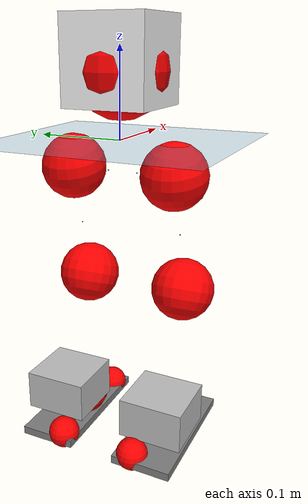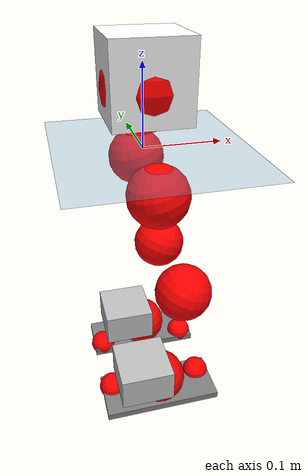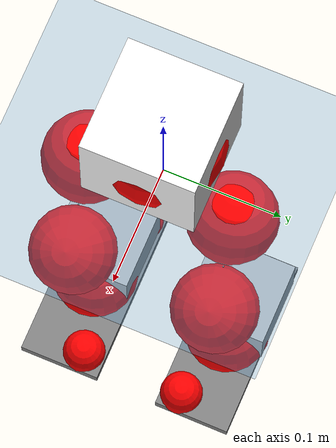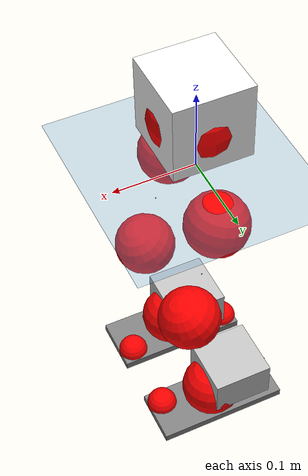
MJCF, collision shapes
<mujoco model="pi_12dof_release_v1">
  <compiler angle="radian" assetdir="assets" balanceinertia="true" inertiafromgeom="false"/>

  <option timestep="0.005" density="1.2" viscosity="2e-05"/>

  <size nkey="1"/>

  <visual>
    <quality shadowsize="8192"/>
    <map shadowclip="0.5"/>
  </visual>

  <default>
    <default class="/">
      <joint armature="0.01" damping="0.01" frictionloss="0.01"/>
      <geom contype="0" conaffinity="0" group="1" solref="-1000 -80"/>
      <site size="0.01 0.005 0.005" group="5"/>
      <general forcelimited="true" biastype="affine" gainprm="20" biasprm="0 -20 -0.5"/>
      <default class="foot">
        <geom size="0.0845 0.036 0.005" type="box" condim="6" group="4" priority="1" friction="0.9 0.2 0.2" solimp="0.015 1 0.005"/>
      </default>
      <default class="reward_collision_sphere">
        <geom group="5" rgba="1 0 0 1"/>
      </default>
    </default>
  </default>

  <asset>
    <texture type="skybox" colorspace="auto" name="//unnamed_texture_0" builtin="gradient" rgb1="0.95 0.95 0.95" rgb2="0.95 0.95 0.95" width="100" height="600"/>
    <texture type="2d" colorspace="auto" name="texplane" builtin="checker" rgb1="0.345 0.575 0.748" rgb2="0.345 0.575 0.748" markrgb="1 1 1" width="512" height="512"/>
    <material name="MatPlane" class="/" texture="texplane" texuniform="true" texrepeat="2 2" specular="0.9"/>
    <mesh name="baselink_1" class="/" file="baselink_1.STL"/>
    <mesh name="r_hip_pitch_link" class="/" file="r_hip_pitch_link.STL"/>
    <mesh name="r_hip_roll_link" class="/" file="r_hip_roll_link.STL"/>
    <mesh name="r_thigh_link" class="/" file="r_thigh_link.STL"/>
    <mesh name="r_calf_link" class="/" file="r_calf_link.STL"/>
    <mesh name="r_ankle_pitch_link" class="/" file="r_ankle_pitch_link.STL"/>
    <mesh name="r_ankle_roll_link" class="/" file="r_ankle_roll_link.STL"/>
    <mesh name="l_hip_pitch_link" class="/" file="l_hip_pitch_link.STL"/>
    <mesh name="l_hip_roll_link" class="/" file="l_hip_roll_link.STL"/>
    <mesh name="l_thigh_link" class="/" file="l_thigh_link.STL"/>
    <mesh name="l_calf_link" class="/" file="l_calf_link.STL"/>
    <mesh name="l_ankle_pitch_link" class="/" file="l_ankle_pitch_link.STL"/>
    <mesh name="l_ankle_roll_link" class="/" file="l_ankle_roll_link.STL"/>
  </asset>

  <worldbody>
    <geom name="floor" class="/" size="100 100 0.125" type="plane" group="0" material="MatPlane"/>
    <light name="toplight_shadow" class="/" pos="0 0 5" dir="0.0990148 0.0990148 -0.990148" type="directional" ambient="0.04 0.04 0.04" diffuse="0.55 0.55 0.55" specular="0.12 0.12 0.12"/>
    <light name="toplight_fill" class="/" pos="0 0 5" dir="0.0990148 0.0990148 -0.990148" type="directional" castshadow="false" ambient="0.04 0.04 0.04" diffuse="0.3 0.3 0.3" specular="0.08 0.08 0.08"/>
    <body name="trunk" pos="0.00198551 -0.000996202 -0.000523379" quat="1 -0.000239653 -4.89183e-06 -0.000253551">
      <inertial pos="0.00244203 0.000336829 0.042417" quat="0.695341 0.0107311 0.0109268 0.718516" mass="1.82448" diaginertia="0.00895728 0.00331682 0.00544495"/>
      <joint name="//unnamed_joint_0" type="free"/>
      <geom name="//unnamed_geom_1" class="/" type="mesh" density="0" rgba="1 1 1 1" mesh="baselink_1"/>
      <geom name="//unnamed_geom_2" class="/" size="0.0473961 0.0473961 0.0473961" pos="0 0 0.0843536" type="box" rgba="1 1 1 1"/>
      <geom name="//unnamed_geom_3" class="reward_collision_sphere" size="0.0521357" pos="0 0 0.0738094"/>
      <site name="imu" class="/" pos="-0.00442142 -0.00132879 -0.0119203" size="0.00947922"/>
      <camera name="track" class="/" pos="0 -1.63097 0" quat="0.707107 0.707107 0 0" mode="trackcom"/>
      <camera name="ego_camera" class="/" pos="0.0730396 0 0.189796" quat="-0.5 -0.5 0.5 0.5"/>
      <body name="r_hip_pitch_link" pos="0.00108937 -0.0185266 -0.0344981" quat="0.992139 0.000842388 -0.125137 -0.000284555">
        <inertial pos="-0.00114269 -0.0453743 0.000110748" quat="-0.0190194 0.705995 -0.0283341 0.707394" mass="0.316754" diaginertia="9.54807e-05 3.49448e-05 0.000107612"/>
        <joint name="r_hip_pitch_joint" class="/" pos="0 0 0" axis="-0.00447469 -0.999923 0.011567" stiffness="0.00115025" range="-1.70354 1.2586" armature="0.00946971" damping="0.0241566" frictionloss="0.00952443"/>
        <geom name="//unnamed_geom_4" class="/" type="mesh" density="0" rgba="0.75294 0.75294 0.75294 1" mesh="r_hip_pitch_link"/>
        <geom name="//unnamed_geom_5" class="/" size="0.000473961 0.000473961 0.000473961" type="box" rgba="0.75294 0.75294 0.75294 1"/>
        <body name="r_hip_roll_link" pos="-0.000464233 -0.0448886 0.000495099" quat="1 4.45781e-06 -8.08203e-05 -0.000231051">
          <inertial pos="-0.00143076 0.000159154 -0.0672559" quat="0.70345 -0.0791242 -0.0821817 0.70153" mass="0.336568" diaginertia="0.000296213 0.000101635 0.000169802"/>
          <joint name="r_hip_roll_joint" class="/" pos="0 0 0" axis="-0.999971 -0.00763706 -0.000415335" stiffness="0.000540725" range="-0.116787 0.533247" armature="0.0090922" damping="0.0072213" frictionloss="0.00906214"/>
          <geom name="//unnamed_geom_6" class="/" type="mesh" density="0" rgba="0.75294 0.75294 0.75294 1" mesh="r_hip_roll_link"/>
          <geom name="//unnamed_geom_7" class="/" size="0.000473961 0.000473961 0.000473961" type="box" rgba="0.75294 0.75294 0.75294 1"/>
          <geom name="//unnamed_geom_8" class="reward_collision_sphere" size="0.0379169"/>
          <body name="r_thigh_link" pos="0.000280142 -0.00186303 -0.0732436" quat="1 -0.000130065 -0.000418616 7.19775e-06">
            <inertial pos="-0.000225787 0.00198895 -0.0502741" quat="0.732655 0.680541 0.00757349 0.00475807" mass="0.0961692" diaginertia="0.000108019 3.41794e-05 7.39817e-05"/>
            <joint name="r_thigh_joint" class="/" pos="0 0 0" axis="0.00328986 0.000373037 -0.999995" range="-0.285074 0.640496" armature="0.00942057" damping="0.00476644" frictionloss="0.00982915"/>
            <geom name="//unnamed_geom_9" class="/" type="mesh" density="0" rgba="0.75294 0.75294 0.75294 1" mesh="r_thigh_link"/>
            <geom name="//unnamed_geom_10" class="/" size="0.000473961 0.000473961 0.000473961" type="box" rgba="0.75294 0.75294 0.75294 1"/>
            <body name="r_calf_link" pos="-0.00242159 0.000371754 -0.0755048" quat="0.947643 0.00028444 0.319331 -2.85638e-05">
              <inertial pos="0.00200381 -0.00176966 -0.0759063" quat="0.999981 -0.00330704 0.00058691 0.00513395" mass="0.715035" diaginertia="0.00315708 0.00129173 0.000233766"/>
              <joint name="r_calf_joint" class="/" pos="0 0 0" axis="0.00887203 -0.999948 0.00494241" range="-1.66211 0.646715" armature="0.00926267" damping="0.0109152" frictionloss="0.00947684"/>
              <geom name="//unnamed_geom_11" class="/" type="mesh" density="0" rgba="0.75294 0.75294 0.75294 1" mesh="r_calf_link"/>
              <geom name="//unnamed_geom_12" class="/" size="0.000473961 0.000473961 0.000473961" type="box" rgba="0.75294 0.75294 0.75294 1"/>
              <geom name="//unnamed_geom_13" class="reward_collision_sphere" size="0.0379169"/>
              <body name="r_ankle_pitch_link" pos="0.000804811 0.00104032 -0.147454" quat="0.980068 9.48759e-06 -0.198663 -3.35747e-05">
                <inertial pos="0.00513805 0.0055262 -0.000970989" quat="0.00225972 0.707088 -0.00225175 0.707119" mass="0.147821" diaginertia="0.000268302 7.89824e-05 0.000154044"/>
                <joint name="r_ankle_pitch_joint" class="/" pos="0 0 0" axis="0.00131784 -0.999993 0.00340447" range="-1.31743 0.499974" armature="0.00875754" damping="0.0053717" frictionloss="0.00909437"/>
                <geom name="//unnamed_geom_14" class="/" type="mesh" density="0" rgba="0.75294 0.75294 0.75294 1" mesh="r_ankle_pitch_link"/>
                <geom name="//unnamed_geom_15" class="/" size="0.0369689 0.0379169 0.023698" type="box" rgba="0.75294 0.75294 0.75294 1"/>
                <body name="r_ankle_roll_link" pos="0.0740217 0.00244207 0.00197026" quat="0.999999 0.00056938 0.000799685 0.000802437">
                  <inertial pos="-0.0207615 -8.66001e-05 -0.0138098" quat="0.560216 0.430034 0.434015 0.559339" mass="0.432055" diaginertia="0.000983682 0.000379623 0.000379945"/>
                  <joint name="r_ankle_roll_joint" class="/" pos="0 0 0" axis="-0.999935 0.0112891 -0.00173835" range="-0.149713 0.147967" armature="0.00909535" damping="0.0184482" frictionloss="0.00944357"/>
                  <geom name="//unnamed_geom_16" class="/" type="mesh" density="0" rgba="0.75294 0.75294 0.75294 1" mesh="r_ankle_roll_link"/>
                  <geom name="//unnamed_geom_17" class="/" type="mesh" rgba="0.75294 0.75294 0.75294 1" mesh="r_ankle_roll_link"/>
                  <geom name="right_foot" class="foot" size="0.0824199 0.0361525 0.00481299" pos="-0.0496669 0 -0.0463945"/>
                  <geom name="//unnamed_geom_19" class="reward_collision_sphere" size="0.0379169" pos="-0.0486931 0 -0.0210884"/>
                  <geom name="//unnamed_geom_20" class="reward_collision_sphere" size="0.0189584" pos="0.0146079 0.0163097 -0.0421768"/>
                  <geom name="//unnamed_geom_21" class="reward_collision_sphere" size="0.0189584" pos="-0.116863 0.0163097 -0.0421768"/>
                  <site name="right_foot" class="foot" pos="-0.0496669 0 -0.0463945" size="0.00947922"/>
                </body>
              </body>
            </body>
          </body>
        </body>
      </body>
      <body name="l_hip_pitch_link" pos="0.00218476 0.0176835 -0.0346021" quat="0.992194 8.80806e-05 -0.124706 6.10443e-05">
        <inertial pos="0.00311359 0.0413598 -0.000104216" quat="-0.0357072 0.710746 0.0244209 0.702117" mass="0.33451" diaginertia="0.0001136 3.79117e-05 0.000128385"/>
        <joint name="l_hip_pitch_joint" class="/" pos="0 0 0" axis="-0.0109043 0.999939 -0.00165187" range="-1.29044 1.75426" armature="0.00834149" damping="0.00844845" frictionloss="0.00918695"/>
        <geom name="//unnamed_geom_22" class="/" type="mesh" density="0" rgba="0.75294 0.75294 0.75294 1" mesh="l_hip_pitch_link"/>
        <geom name="//unnamed_geom_23" class="/" size="0.000473961 0.000473961 0.000473961" type="box" rgba="0.75294 0.75294 0.75294 1"/>
        <body name="l_hip_roll_link" pos="0.000726883 0.0451301 0.000720554" quat="1 -0.000431556 -0.000175326 -0.000212863">
          <inertial pos="-0.00240248 0.00236782 -0.0644225" quat="0.703367 -0.0733496 -0.0765505 0.702876" mass="0.332543" diaginertia="0.000292991 0.000101766 0.000163994"/>
          <joint name="l_hip_roll_joint" class="/" pos="0 0 0" axis="-0.99999 -0.00403588 0.0016747" range="-0.505943 0.0997281" armature="0.0102618" damping="0.000326198" frictionloss="0.00953733"/>
          <geom name="//unnamed_geom_24" class="/" type="mesh" density="0" rgba="0.75294 0.75294 0.75294 1" mesh="l_hip_roll_link"/>
          <geom name="//unnamed_geom_25" class="/" size="0.000473961 0.000473961 0.000473961" type="box" rgba="0.75294 0.75294 0.75294 1"/>
          <geom name="//unnamed_geom_26" class="reward_collision_sphere" size="0.0379169"/>
          <body name="l_thigh_link" pos="-0.000119499 0.00127162 -0.0756054" quat="0.999999 -0.00116024 -0.000194814 -0.000284457">
            <inertial pos="0.00041796 -0.00140449 -0.0476815" quat="0.675354 0.737492 -0.000791473 0.00133371" mass="0.0932906" diaginertia="0.000109454 3.44097e-05 7.52406e-05"/>
            <joint name="l_thigh_joint" class="/" pos="0 0 0" axis="0.00565251 -0.00116507 -0.999983" range="-0.647508 0.29033" armature="0.00946022" damping="0" frictionloss="0.00973449"/>
            <geom name="//unnamed_geom_27" class="/" type="mesh" density="0" rgba="0.75294 0.75294 0.75294 1" mesh="l_thigh_link"/>
            <geom name="//unnamed_geom_28" class="/" size="0.000473961 0.000473961 0.000473961" type="box" rgba="0.75294 0.75294 0.75294 1"/>
            <body name="l_calf_link" pos="-0.00287618 0.000221932 -0.073232" quat="0.947511 -0.000371728 0.319722 -5.05338e-05">
              <inertial pos="0.00105633 0.00186944 -0.0734206" quat="0.999867 0.0114405 0.00654113 0.0096324" mass="0.695133" diaginertia="0.00308704 0.00127133 0.000228593"/>
              <joint name="l_calf_joint" class="/" pos="0 0 0" axis="-0.00796901 0.999938 -0.00776786" stiffness="0.00256294" range="-0.635831 1.63317" armature="0.00954584" damping="0.0101536" frictionloss="0.00870811"/>
              <geom name="//unnamed_geom_29" class="/" type="mesh" density="0" rgba="0.75294 0.75294 0.75294 1" mesh="l_calf_link"/>
              <geom name="//unnamed_geom_30" class="/" size="0.000473961 0.000473961 0.000473961" type="box" rgba="0.75294 0.75294 0.75294 1"/>
              <geom name="//unnamed_geom_31" class="reward_collision_sphere" size="0.0379169"/>
              <body name="l_ankle_pitch_link" pos="0.000246454 0.000858547 -0.145904" quat="0.980078 -0.000256416 -0.198613 -0.000377011">
                <inertial pos="0.00363057 -0.00133082 -0.000878345" quat="-0.0114622 0.701975 -0.00253237 0.712105" mass="0.150555" diaginertia="0.000267711 8.12298e-05 0.000160433"/>
                <joint name="l_ankle_pitch_joint" class="/" pos="0 0 0" axis="0.00544457 0.999984 0.00139828" range="-0.498413 1.31122" armature="0.0099545" damping="0" frictionloss="0.00934842"/>
                <geom name="//unnamed_geom_32" class="/" type="mesh" density="0" rgba="0.75294 0.75294 0.75294 1" mesh="l_ankle_pitch_link"/>
                <geom name="//unnamed_geom_33" class="/" size="0.0369689 0.0379169 0.023698" type="box" rgba="0.75294 0.75294 0.75294 1"/>
                <body name="l_ankle_roll_link" pos="0.0742618 0.000962709 -0.000107754" quat="1 8.83315e-05 -1.4861e-06 5.27816e-05">
                  <inertial pos="-0.0261075 -0.00282322 -0.0130195" quat="0.561684 0.429638 0.433483 0.558583" mass="0.448022" diaginertia="0.000978416 0.000377751 0.00036767"/>
                  <joint name="l_ankle_roll_joint" class="/" pos="0 0 0" axis="-0.99999 -0.00425799 -0.00105436" stiffness="0.00486038" range="-0.164408 0.148236" armature="0.00959039" damping="0.018256" frictionloss="0.0103817"/>
                  <geom name="//unnamed_geom_34" class="/" type="mesh" density="0" rgba="0.75294 0.75294 0.75294 1" mesh="l_ankle_roll_link"/>
                  <geom name="//unnamed_geom_35" class="/" type="mesh" rgba="0.75294 0.75294 0.75294 1" mesh="l_ankle_roll_link"/>
                  <geom name="left_foot" class="foot" size="0.0816267 0.0339321 0.00484528" pos="-0.0496669 0 -0.0463945"/>
                  <geom name="//unnamed_geom_37" class="reward_collision_sphere" size="0.0379169" pos="-0.0486931 0 -0.0210884"/>
                  <geom name="//unnamed_geom_38" class="reward_collision_sphere" size="0.0189584" pos="0.0146079 -0.0163097 -0.0421768"/>
                  <geom name="//unnamed_geom_39" class="reward_collision_sphere" size="0.0189584" pos="-0.116863 -0.0163097 -0.0421768"/>
                  <site name="left_foot" class="foot" pos="-0.0496669 0 -0.0463945" size="0.00947922"/>
                </body>
              </body>
            </body>
          </body>
        </body>
      </body>
    </body>
  </worldbody>

  <contact>
    <pair class="/" geom1="floor" geom2="right_foot" name="//unnamed_contact_1"/>
    <pair class="/" geom1="floor" geom2="left_foot" name="//unnamed_contact_0"/>
  </contact>

  <actuator>
    <general name="r_hip_pitch_joint" class="/" joint="r_hip_pitch_joint" forcerange="-19.3145 19.3145" gainprm="19.2577" biasprm="0 -19.2577 -0.467972"/>
    <general name="r_hip_roll_joint" class="/" joint="r_hip_roll_joint" forcerange="-21.5123 21.5123" gainprm="19.2577" biasprm="0 -19.2577 -0.467972"/>
    <general name="r_thigh_joint" class="/" joint="r_thigh_joint" forcerange="-20.6929 20.6929" gainprm="19.2577" biasprm="0 -19.2577 -0.467972"/>
    <general name="r_calf_joint" class="/" joint="r_calf_joint" forcerange="-21.6872 21.6872" gainprm="19.2577" biasprm="0 -19.2577 -0.467972"/>
    <general name="r_ankle_pitch_joint" class="/" joint="r_ankle_pitch_joint" forcerange="-20.5167 20.5167" gainprm="19.2577" biasprm="0 -19.2577 -0.467972"/>
    <general name="r_ankle_roll_joint" class="/" joint="r_ankle_roll_joint" forcerange="-19.1661 19.1661" gainprm="19.2577" biasprm="0 -19.2577 -0.467972"/>
    <general name="l_hip_pitch_joint" class="/" joint="l_hip_pitch_joint" forcerange="-20.0102 20.0102" gainprm="19.2577" biasprm="0 -19.2577 -0.467972"/>
    <general name="l_hip_roll_joint" class="/" joint="l_hip_roll_joint" forcerange="-18.7091 18.7091" gainprm="19.2577" biasprm="0 -19.2577 -0.467972"/>
    <general name="l_thigh_joint" class="/" joint="l_thigh_joint" forcerange="-19.2354 19.2354" gainprm="19.2577" biasprm="0 -19.2577 -0.467972"/>
    <general name="l_calf_joint" class="/" joint="l_calf_joint" forcerange="-19.813 19.813" gainprm="19.2577" biasprm="0 -19.2577 -0.467972"/>
    <general name="l_ankle_pitch_joint" class="/" joint="l_ankle_pitch_joint" forcerange="-20.2029 20.2029" gainprm="19.2577" biasprm="0 -19.2577 -0.467972"/>
    <general name="l_ankle_roll_joint" class="/" joint="l_ankle_roll_joint" forcerange="-19.8779 19.8779" gainprm="19.2577" biasprm="0 -19.2577 -0.467972"/>
  </actuator>

  <sensor>
    <gyro site="imu" name="imu_angular_velocity"/>
    <velocimeter site="imu" name="imu_linear_velocity"/>
    <framelinvel objtype="site" objname="left_foot" name="left_foot_global_linear_velocity"/>
    <framelinvel objtype="site" objname="right_foot" name="right_foot_global_linear_velocity"/>
  </sensor>

  <keyframe>
    <key name="home" qpos="0 0 0.291 1 0 0 0 0.4 0 0 -0.8 0.4 0 -0.4 0 0 0.8 -0.4 0"/>
  </keyframe>
</mujoco>
